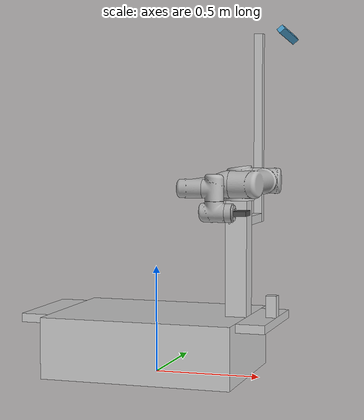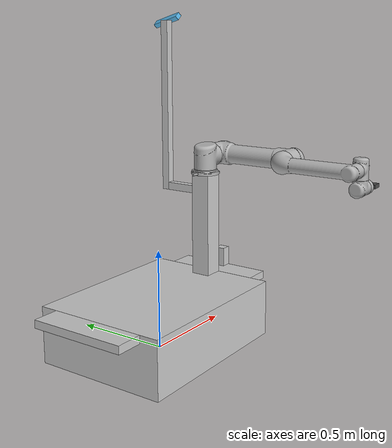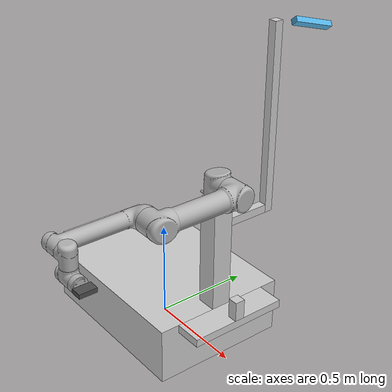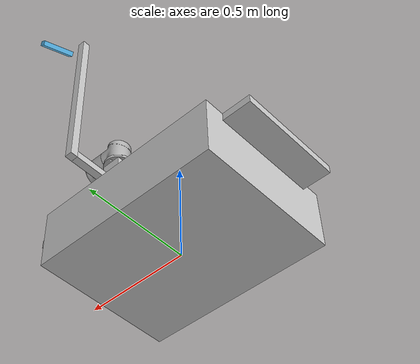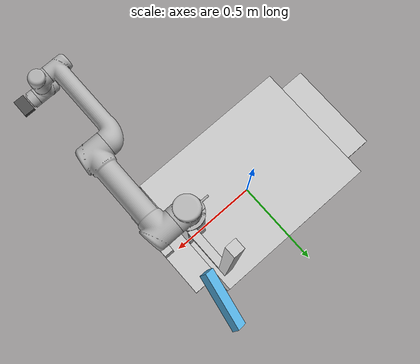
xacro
<?xml version="1.0"?>
<robot name="aimm" xmlns:xacro="http://www.ros.org/wiki/xacro">

  <xacro:include filename="$(find aimm_description)/urdf/ur5.urdf.xacro"/>
  <xacro:ur5_robot prefix="" joint_limited="true"/>

  <link name="base_link">
	<visual>
	  <geometry>
		<box size="0.9 0.69 0.285"/>
	  </geometry>
	  <origin xyz="0 0 0.1425"/>
	  <material name="p">
		<color rgba="0.8 0.8 0.8 1.0"/>
	  </material>
	</visual>
  </link>

  <link name="supporter">
	<visual>
	  <geometry>
		<box size="0.1 0.1 0.54"/>
	  </geometry>
	  <origin xyz="0 0 0.27"/>
	  <material name="p"/>
	</visual>
  </link>

  <link name="laser_supporter_f">
	<visual>
	  <geometry>
		<box size="0.135 0.5 0.04"/>
	  </geometry>
	  <origin xyz="0 0 0"/>
	  <material name="p"/>
	</visual>

  </link>
  <link name="laser_supporter_b">
	<visual>
	  <geometry>
		<box size="0.135 0.5 0.04"/>
	  </geometry>
	  <origin xyz="0 0 0"/>
	  <material name="p"/>
	</visual>
  </link>

  <link name="laser">
	<visual>
	  <geometry>
		<box size="0.05 0.05 0.1"/>
	  </geometry>
	  <origin xyz="0 0 0"/>
	  <material name="p"/>
	</visual>
  </link>

  <link name="kinect_supp1">
	<visual>
		<geometry>
			<box size="0.04 0.04 0.2"/>
		</geometry>
		<origin xyz="0 0 0"/>
		<material name="p"/>
	</visual>
  </link>

  <link name="kinect_supp2">
	<visual>
		<geometry>
			<box size="0.04 0.04 0.9"/>
		</geometry>
		<origin xyz="0 0 0"/>
		<material name="p"/>
	</visual>
  </link>

  <link name="kinect">
	<visual>
		<geometry>
			<box size="0.025 0.18 0.035" />
		</geometry>
	</visual>
  </link>

  <joint name="ur_base_link_to_kinect" type="fixed">
	<parent link="ur_base_link"/>
	<child link="kinect"/>
	<origin xyz="-0.3541575 0.1507695 0.779517" rpy="-0.369 0.825 1.119"/>
  </joint>

  <joint name="supporter_to_kinect_supp1" type="fixed">
	<parent link="supporter"/>
	<child link="kinect_supp1"/>
	<origin xyz="0.03 0.15 0.44" rpy="1.57 0 0"/>
  </joint>
  <joint name="supporter_to_kinect_supp2" type="fixed">
	<parent link="supporter"/>
	<child link="kinect_supp2"/>
	<origin xyz="0.03 0.27 0.87" rpy="0 0 0"/>
  </joint>

  <joint name="base_link_to_laser" type="fixed">
	<parent link="base_link"/>
	<child link="laser"/>
	<origin xyz="0.56 0 0.335" rpy = "0 0 0"/>
  </joint>

  <joint name="base_link_to_laser_supporter_f" type="fixed">
	<parent link="base_link"/>
	<child link="laser_supporter_f"/>
	<origin xyz="0.5175 0 0.265" rpy = "0 0 0"/>
  </joint>

  <joint name="base_link_to_laser_supporter_b" type="fixed">
	<parent link="base_link"/>
	<child link="laser_supporter_b"/>
	<origin xyz="-0.5175 0 0.265" rpy = "0 0 0"/>
  </joint>

  <joint name="base_link_to_supporter" type="fixed">
	<parent link="base_link"/>
	<child link="supporter"/>
	<origin xyz = "0.4 0 0.285" rpy = "0 0 0"/>
  </joint>
  <joint name="supporter_to_robot" type="fixed">
    <parent link="supporter"/>
	<child link="ur_base_link"/>
	<origin xyz = "0 0 0.54" rpy = "0 0 -1.57"/>
  </joint>

  <link name="gripper_base">
	<visual>
	  <geometry>
		<box size="0.08 0.02 0.05"/>
	  </geometry>
	  <material name="gray">
		<color rgba="0.3 0.3 0.3 1.0"/>
	  </material>
	</visual>
  </link>
  <joint name="tool0_to_gripper_base" type="fixed">
	<parent link="tool0"/>
	<child link="gripper_base"/>
	<origin xyz="0 0 0.03" rpy="0 0 0"/>
  </joint>

</robot>

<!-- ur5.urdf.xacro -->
<robot xmlns:xacro="http://www.ros.org/wiki/xacro">

  <xacro:include filename="$(find ur_description)/urdf/ur.transmission.xacro" />
  <xacro:include filename="$(find ur_description)/urdf/ur.gazebo.xacro" />

  <property name="pi" value="3.14159265" />

  <!-- Inertia parameters -->
  <property name="base_mass" value="4.0" />  <!-- This mass might be incorrect -->
  <property name="shoulder_mass" value="3.7000" />
  <property name="upper_arm_mass" value="8.3930" />
  <property name="forearm_mass" value="2.2750" />
  <property name="wrist_1_mass" value="1.2190" />
  <property name="wrist_2_mass" value="1.2190" />
  <property name="wrist_3_mass" value="0.1879" />

  <property name="shoulder_cog" value="0.0 0.00193 -0.02561" />
  <property name="upper_arm_cog" value="0.0 -0.024201 0.2125" />
  <property name="forearm_cog" value="0.0 0.0265 0.11993" />
  <property name="wrist_1_cog" value="0.0 0.110949 0.01634" />
  <property name="wrist_2_cog" value="0.0 0.0018 0.11099" />
  <property name="wrist_3_cog" value="0.0 0.001159 0.0" />

  <!-- Kinematic model -->
  <!-- Properties from urcontrol.conf -->
  <property name="ur5_d1" value="0.089159" />
  <property name="ur5_a2" value="-0.42500" />
  <property name="ur5_a3" value="-0.39225" />
  <property name="ur5_d4" value="0.10915" />
  <property name="ur5_d5" value="0.09465" />
  <property name="ur5_d6" value="0.0823" />

  <!-- Arbitrary offsets for shoulder/elbow joints -->
  <property name="shoulder_offset" value="0.13585" />  <!-- measured from model -->
  <property name="elbow_offset" value="-0.1197" /> <!-- measured from model -->

  <!-- link lengths used in model -->
  <property name="shoulder_height" value="${ur5_d1}" />
  <property name="upper_arm_length" value="${-ur5_a2}" />
  <property name="forearm_length" value="${-ur5_a3}" />
  <property name="wrist_1_length" value="${ur5_d4 - elbow_offset - shoulder_offset}" />
  <property name="wrist_2_length" value="${ur5_d5}" />
  <property name="wrist_3_length" value="${ur5_d6}" />
  <!--property name="shoulder_height" value="0.089159" /-->
  <!--property name="shoulder_offset" value="0.13585" /-->  <!-- shoulder_offset - elbow_offset + wrist_1_length = 0.10915 -->
  <!--property name="upper_arm_length" value="0.42500" /-->
  <!--property name="elbow_offset" value="0.1197" /-->       <!-- CAD measured -->
  <!--property name="forearm_length" value="0.39225" /-->
  <!--property name="wrist_1_length" value="0.093" /-->     <!-- CAD measured -->
  <!--property name="wrist_2_length" value="0.09465" /-->   <!-- In CAD this distance is 0.930, but in the spec it is 0.09465 -->
  <!--property name="wrist_3_length" value="0.0823" /-->

  <property name="shoulder_radius" value="0.060" />   <!-- manually measured -->
  <property name="upper_arm_radius" value="0.054" />  <!-- manually measured -->
  <property name="elbow_radius" value="0.060" />      <!-- manually measured -->
  <property name="forearm_radius" value="0.040" />    <!-- manually measured -->
  <property name="wrist_radius" value="0.045" />      <!-- manually measured -->

  <xacro:macro name="cylinder_inertial" params="radius length mass *origin">
    <inertial>
      <mass value="${mass}" />
      <insert_block name="origin" />
      <inertia ixx="${0.0833333 * mass * (3 * radius * radius + length * length)}" ixy="0.0" ixz="0.0"
        iyy="${0.0833333 * mass * (3 * radius * radius + length * length)}" iyz="0.0"
        izz="${0.5 * mass * radius * radius}" />
    </inertial>
  </xacro:macro>

  <xacro:macro name="ur5_robot" params="prefix joint_limited">

    <link name="${prefix}ur_base_link" >
      <visual>
        <geometry>
          <mesh filename="package://ur_description/meshes/ur5/visual/base.dae" />
        </geometry>
        <material name="LightGrey">
          <color rgba="0.7 0.7 0.7 1.0"/>
        </material>
      </visual>
      <collision>
        <geometry>
          <mesh filename="package://ur_description/meshes/ur5/collision/base.stl" />
        </geometry>
      </collision>
      <xacro:cylinder_inertial radius="0.06" length="0.05" mass="${base_mass}">
        <origin xyz="0.0 0.0 0.0" rpy="0 0 0" />
      </xacro:cylinder_inertial>
    </link>

    <joint name="${prefix}shoulder_pan_joint" type="revolute">
      <parent link="${prefix}ur_base_link" />
      <child link = "${prefix}shoulder_link" />
      <origin xyz="0.0 0.0 ${shoulder_height}" rpy="0.0 0.0 0.0" />
      <axis xyz="0 0 1" />
      <xacro:unless value="${joint_limited}">
        <limit lower="${-2.0 * pi}" upper="${2.0 * pi}" effort="150.0" velocity="3.15"/>
      </xacro:unless>
      <xacro:if value="${joint_limited}">
        <limit lower="${-pi}" upper="${pi}" effort="150.0" velocity="3.15"/>
      </xacro:if>
      <dynamics damping="0.0" friction="0.0"/>
    </joint>

    <link name="${prefix}shoulder_link">
      <visual>
        <geometry>
          <mesh filename="package://ur_description/meshes/ur5/visual/shoulder.dae" />
        </geometry>
        <material name="LightGrey">
          <color rgba="0.7 0.7 0.7 1.0"/>
        </material>
      </visual>
      <collision>
        <geometry>
          <mesh filename="package://ur_description/meshes/ur5/collision/shoulder.stl" />
        </geometry>
      </collision>
      <xacro:cylinder_inertial radius="0.06" length="0.15" mass="${shoulder_mass}">
        <origin xyz="0.0 0.0 0.0" rpy="0 0 0" />
      </xacro:cylinder_inertial>
    </link>

    <joint name="${prefix}shoulder_lift_joint" type="revolute">
      <parent link="${prefix}shoulder_link" />
      <child link = "${prefix}upper_arm_link" />
      <origin xyz="0.0 ${shoulder_offset} 0.0" rpy="0.0 ${pi / 2.0} 0.0" />
      <axis xyz="0 1 0" />
      <xacro:unless value="${joint_limited}">
        <limit lower="${-2.0 * pi}" upper="${2.0 * pi}" effort="150.0" velocity="3.15"/>
      </xacro:unless>
      <xacro:if value="${joint_limited}">
        <limit lower="${-pi}" upper="${pi}" effort="150.0" velocity="3.15"/>
      </xacro:if>
      <dynamics damping="0.0" friction="0.0"/>
    </joint>

    <link name="${prefix}upper_arm_link">
      <visual>
        <geometry>
          <mesh filename="package://ur_description/meshes/ur5/visual/upperarm.dae" />
        </geometry>
        <material name="LightGrey">
          <color rgba="0.7 0.7 0.7 1.0"/>
        </material>
      </visual>
      <collision>
        <geometry>
          <mesh filename="package://ur_description/meshes/ur5/collision/upperarm.stl" />
        </geometry>
      </collision>
      <xacro:cylinder_inertial radius="0.06" length="0.56" mass="${upper_arm_mass}">
        <origin xyz="0.0 0.0 0.28" rpy="0 0 0" />
      </xacro:cylinder_inertial>
    </link>

    <joint name="${prefix}elbow_joint" type="revolute">
      <parent link="${prefix}upper_arm_link" />
      <child link = "${prefix}forearm_link" />
      <origin xyz="0.0 ${elbow_offset} ${upper_arm_length}" rpy="0.0 0.0 0.0" />
      <axis xyz="0 1 0" />
      <xacro:unless value="${joint_limited}">
        <limit lower="${-2.0 * pi}" upper="${2.0 * pi}" effort="150.0" velocity="3.15"/>
      </xacro:unless>
      <xacro:if value="${joint_limited}">
        <limit lower="${-pi}" upper="${pi}" effort="150.0" velocity="3.15"/>
      </xacro:if>
      <dynamics damping="0.0" friction="0.0"/>
    </joint>

    <link name="${prefix}forearm_link">
      <visual>
        <geometry>
          <mesh filename="package://ur_description/meshes/ur5/visual/forearm.dae" />
        </geometry>
        <material name="LightGrey">
          <color rgba="0.7 0.7 0.7 1.0"/>
        </material>
      </visual>
      <collision>
        <geometry>
          <mesh filename="package://ur_description/meshes/ur5/collision/forearm.stl" />
        </geometry>
      </collision>
      <xacro:cylinder_inertial radius="0.06" length="0.5" mass="${forearm_mass}">
        <origin xyz="0.0 0.0 0.25" rpy="0 0 0" />
      </xacro:cylinder_inertial>
    </link>

    <joint name="${prefix}wrist_1_joint" type="revolute">
      <parent link="${prefix}forearm_link" />
      <child link = "${prefix}wrist_1_link" />
      <origin xyz="0.0 0.0 ${forearm_length}" rpy="0.0 ${pi / 2.0} 0.0" />
      <axis xyz="0 1 0" />
      <xacro:unless value="${joint_limited}">
        <limit lower="${-2.0 * pi}" upper="${2.0 * pi}" effort="28.0" velocity="3.2"/>
      </xacro:unless>
      <xacro:if value="${joint_limited}">
        <limit lower="${-pi}" upper="${pi}" effort="28.0" velocity="3.2"/>
      </xacro:if>
      <dynamics damping="0.0" friction="0.0"/>
    </joint>

    <link name="${prefix}wrist_1_link">
      <visual>
        <geometry>
          <mesh filename="package://ur_description/meshes/ur5/visual/wrist1.dae" />
        </geometry>
        <material name="LightGrey">
          <color rgba="0.7 0.7 0.7 1.0"/>
        </material>
      </visual>
      <collision>
        <geometry>
          <mesh filename="package://ur_description/meshes/ur5/collision/wrist1.stl" />
        </geometry>
      </collision>
      <xacro:cylinder_inertial radius="0.6" length="0.12" mass="${wrist_1_mass}">
        <origin xyz="0.0 0.0 0.0" rpy="0 0 0" />
      </xacro:cylinder_inertial>
    </link>

    <joint name="${prefix}wrist_2_joint" type="revolute">
      <parent link="${prefix}wrist_1_link" />
      <child link = "${prefix}wrist_2_link" />
      <origin xyz="0.0 ${wrist_1_length} 0.0" rpy="0.0 0.0 0.0" />
      <axis xyz="0 0 1" />
      <xacro:unless value="${joint_limited}">
        <limit lower="${-2.0 * pi}" upper="${2.0 * pi}" effort="28.0" velocity="3.2"/>
      </xacro:unless>
      <xacro:if value="${joint_limited}">
        <limit lower="${-pi}" upper="${pi}" effort="28.0" velocity="3.2"/>
      </xacro:if>
      <dynamics damping="0.0" friction="0.0"/>
    </joint>

    <link name="${prefix}wrist_2_link">
      <visual>
        <geometry>
          <mesh filename="package://ur_description/meshes/ur5/visual/wrist2.dae" />
        </geometry>
        <material name="LightGrey">
          <color rgba="0.7 0.7 0.7 1.0"/>
        </material>
      </visual>
      <collision>
        <geometry>
          <mesh filename="package://ur_description/meshes/ur5/collision/wrist2.stl" />
        </geometry>
      </collision>
      <xacro:cylinder_inertial radius="0.6" length="0.12" mass="${wrist_2_mass}">
        <origin xyz="0.0 0.0 0.0" rpy="0 0 0" />
      </xacro:cylinder_inertial>
    </link>

    <joint name="${prefix}wrist_3_joint" type="revolute">
      <parent link="${prefix}wrist_2_link" />
      <child link = "${prefix}wrist_3_link" />
      <origin xyz="0.0 0.0 ${wrist_2_length}" rpy="0.0 0.0 0.0" />
      <axis xyz="0 1 0" />
      <xacro:unless value="${joint_limited}">
        <limit lower="${-2.0 * pi}" upper="${2.0 * pi}" effort="28.0" velocity="3.2"/>
      </xacro:unless>
      <xacro:if value="${joint_limited}">
        <limit lower="${-pi}" upper="${pi}" effort="28.0" velocity="3.2"/>
      </xacro:if>
      <dynamics damping="0.0" friction="0.0"/>
    </joint>

    <link name="${prefix}wrist_3_link">
      <visual>
        <geometry>
          <mesh filename="package://ur_description/meshes/ur5/visual/wrist3.dae" />
        </geometry>
        <material name="LightGrey">
          <color rgba="0.7 0.7 0.7 1.0"/>
        </material>
      </visual>
      <collision>
        <geometry>
          <mesh filename="package://ur_description/meshes/ur5/collision/wrist3.stl" />
        </geometry>
      </collision>
      <xacro:cylinder_inertial radius="0.6" length="0.12" mass="${wrist_3_mass}">
        <origin xyz="0.0 0.0 0.0" rpy="0 0 0" />
      </xacro:cylinder_inertial>
    </link>

    <joint name="${prefix}ee_fixed_joint" type="fixed">
      <parent link="${prefix}wrist_3_link" />
      <child link = "${prefix}ee_link" />
      <origin xyz="0.0 ${wrist_3_length} 0.0" rpy="0.0 0.0 ${pi/2.0}" />
    </joint>

    <link name="${prefix}ee_link">
      <collision>
        <geometry>
          <box size="0.01 0.01 0.01"/>
        </geometry>
        <origin rpy="0 0 0" xyz="-0.01 0 0"/>
      </collision>
    </link>

    <xacro:ur_arm_transmission prefix="${prefix}" />
    <xacro:ur_arm_gazebo prefix="${prefix}" />

    <!-- ROS ur_base_link to UR 'Base' Coordinates transform -->
    <link name="${prefix}base"/>
    <joint name="${prefix}ur_base_link-base_fixed_joint" type="fixed">
      <!-- NOTE: this rotation is only needed as long as ur_base_link itself is
                 not corrected wrt the real robot (ie: rotated over 180
                 degrees)
      -->
      <origin xyz="0 0 0" rpy="0 0 ${-pi}"/>
      <parent link="${prefix}ur_base_link"/>
      <child link="${prefix}base"/>
    </joint>

    <!-- Frame coincident with all-zeros TCP on UR controller -->
    <link name="${prefix}tool0"/>
    <joint name="${prefix}wrist_3_link-tool0_fixed_joint" type="fixed">
      <origin xyz="0 ${wrist_3_length} 0" rpy="${pi/-2.0} 0 0"/>
      <parent link="${prefix}wrist_3_link"/>
      <child link="${prefix}tool0"/>
    </joint>

  </xacro:macro>
</robot>
